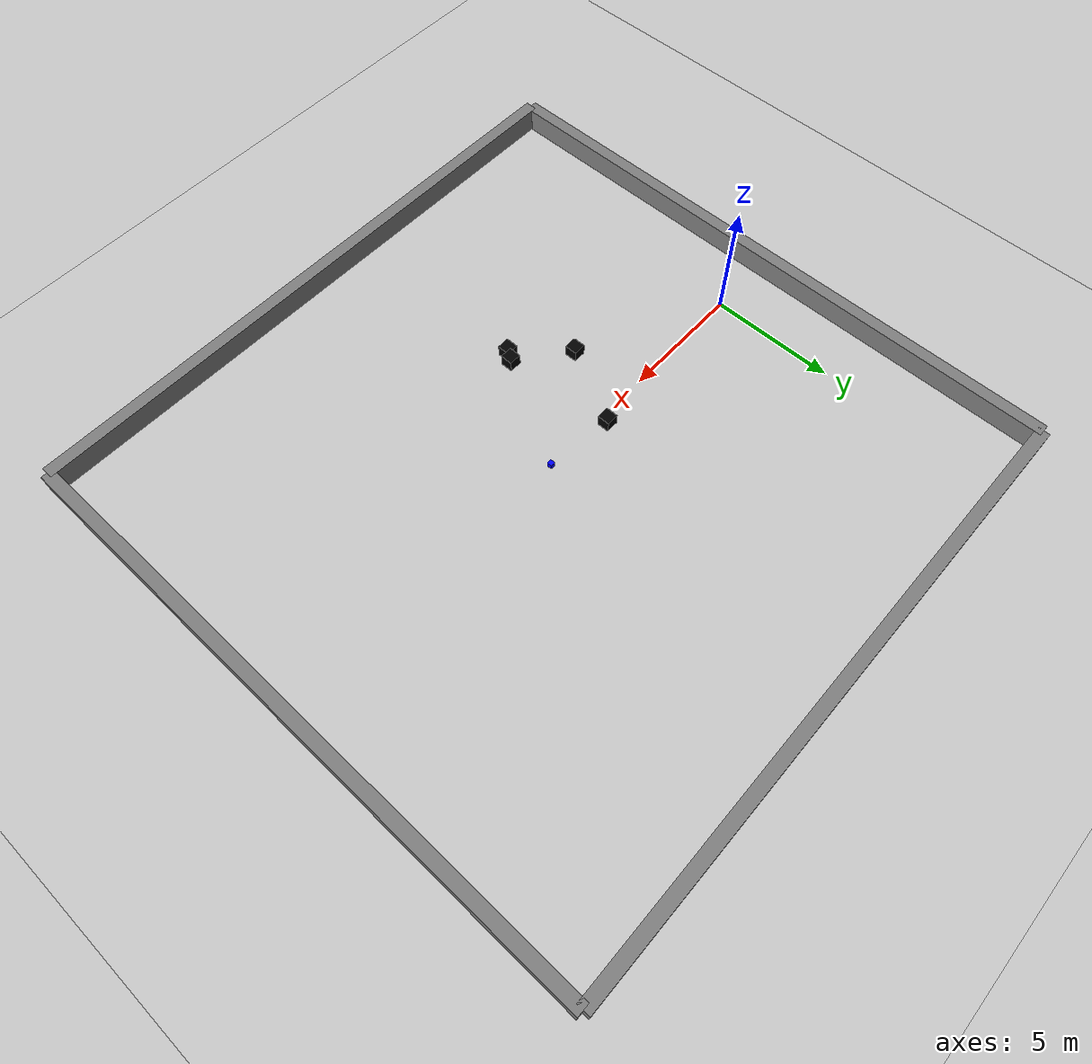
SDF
<?xml version="1.0" ?>
<sdf version="1.8">
    <world name="arena_world">
        <physics name="1ms" type="ignored">
            <max_step_size>0.001</max_step_size>
            <real_time_factor>1.0</real_time_factor>
        </physics>
        <plugin filename="gz-sim-physics-system" name="gz::sim::systems::Physics"/>
        <plugin filename="gz-sim-user-commands-system" name="gz::sim::systems::UserCommands"/>
        <plugin filename="gz-sim-scene-broadcaster-system" name="gz::sim::systems::SceneBroadcaster"/>
        <plugin filename="gz-sim-sensors-system" name="gz::sim::systems::Sensors">
            <render_engine>ogre2</render_engine>
        </plugin>

        <light type="directional" name="sun">
            <cast_shadows>true</cast_shadows>
            <pose>0 0 10 0 0 0</pose>
            <diffuse>0.8 0.8 0.8 1</diffuse>
            <specular>0.2 0.2 0.2 1</specular>
            <direction>-0.5 0.1 -0.9</direction>
        </light>

        <model name="ground_plane">
            <static>true</static>
            <link name="link">
                <collision name="collision">
                    <geometry><plane><normal>0 0 1</normal><size>100 100</size></plane></geometry>
                </collision>
                <visual name="visual">
                    <geometry><plane><normal>0 0 1</normal><size>100 100</size></plane></geometry>
                    <material><ambient>0.8 0.8 0.8 1</ambient><diffuse>0.8 0.8 0.8 1</diffuse></material>
                </visual>
            </link>
        </model>

        <!-- WALLS -->
        <model name="wall_n"><pose>10 12.5 0.5 0 0 0</pose><static>true</static><link name="link"><visual name="v"><geometry><box><size>25 0.5 1</size></box></geometry><material><ambient>0.5 0.5 0.5 1</ambient></material></visual><collision name="c"><geometry><box><size>25 0.5 1</size></box></geometry></collision></link></model>
        <model name="wall_s"><pose>10 -12.5 0.5 0 0 0</pose><static>true</static><link name="link"><visual name="v"><geometry><box><size>25 0.5 1</size></box></geometry><material><ambient>0.5 0.5 0.5 1</ambient></material></visual><collision name="c"><geometry><box><size>25 0.5 1</size></box></geometry></collision></link></model>
        <model name="wall_e"><pose>22.5 0 0.5 0 0 0</pose><static>true</static><link name="link"><visual name="v"><geometry><box><size>0.5 25 1</size></box></geometry><material><ambient>0.5 0.5 0.5 1</ambient></material></visual><collision name="c"><geometry><box><size>0.5 25 1</size></box></geometry></collision></link></model>
        <model name="wall_w"><pose>-2.5 0 0.5 0 0 0</pose><static>true</static><link name="link"><visual name="v"><geometry><box><size>0.5 25 1</size></box></geometry><material><ambient>0.5 0.5 0.5 1</ambient></material></visual><collision name="c"><geometry><box><size>0.5 25 1</size></box></geometry></collision></link></model>

        <!-- TARGET BOX -->
        <model name="target_box">
            <pose>10 0 0.1 0 0 0</pose>
            <link name="link">
                <inertial>
                    <mass>0.1</mass>
                    <inertia>
                        <ixx>0.0001</ixx><ixy>0</ixy><ixz>0</ixz>
                        <iyy>0.0001</iyy><iyz>0</iyz>
                        <izz>0.0001</izz>
                    </inertia>
                </inertial>
                <visual name="v">
                    <geometry><box><size>0.2 0.2 0.2</size></box></geometry>
                    <material><ambient>0 0 1 1</ambient><diffuse>0 0 1 1</diffuse></material>
                </visual>
                <collision name="c">
                    <geometry><box><size>0.2 0.2 0.2</size></box></geometry>
                    <surface>
                        <friction>
                            <ode><mu>100</mu><mu2>100</mu2></ode>
                        </friction>
                    </surface>
                </collision>
            </link>
        </model>

        <model name="obs_0">
            <static>true</static>
            <pose>7.26 0.31 0.25 0 0 0</pose>
            <link name="l">
                <visual name="v">
                    <geometry><box><size>0.5 0.5 0.5</size></box></geometry>
                    <material><ambient>0 0 0 1</ambient></material>
                </visual>
                <collision name="c">
                    <geometry><box><size>0.5 0.5 0.5</size></box></geometry>
                </collision>
            </link>
        </model>

        <model name="obs_1">
            <static>true</static>
            <pose>5.68 -2.69 0.25 0 0 0</pose>
            <link name="l">
                <visual name="v">
                    <geometry><box><size>0.5 0.5 0.5</size></box></geometry>
                    <material><ambient>0 0 0 1</ambient></material>
                </visual>
                <collision name="c">
                    <geometry><box><size>0.5 0.5 0.5</size></box></geometry>
                </collision>
            </link>
        </model>

        <model name="obs_2">
            <static>true</static>
            <pose>7.42 -4.58 0.25 0 0 0</pose>
            <link name="l">
                <visual name="v">
                    <geometry><box><size>0.5 0.5 0.5</size></box></geometry>
                    <material><ambient>0 0 0 1</ambient></material>
                </visual>
                <collision name="c">
                    <geometry><box><size>0.5 0.5 0.5</size></box></geometry>
                </collision>
            </link>
        </model>

        <model name="obs_3">
            <static>true</static>
            <pose>7.67 -4.19 0.25 0 0 0</pose>
            <link name="l">
                <visual name="v">
                    <geometry><box><size>0.5 0.5 0.5</size></box></geometry>
                    <material><ambient>0 0 0 1</ambient></material>
                </visual>
                <collision name="c">
                    <geometry><box><size>0.5 0.5 0.5</size></box></geometry>
                </collision>
            </link>
        </model>

    </world>
</sdf>
